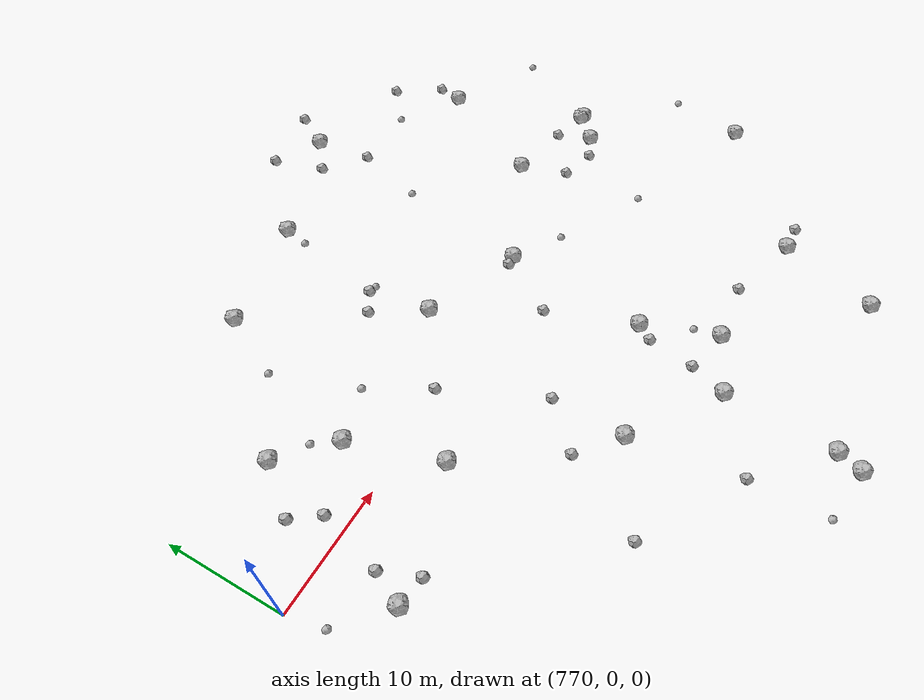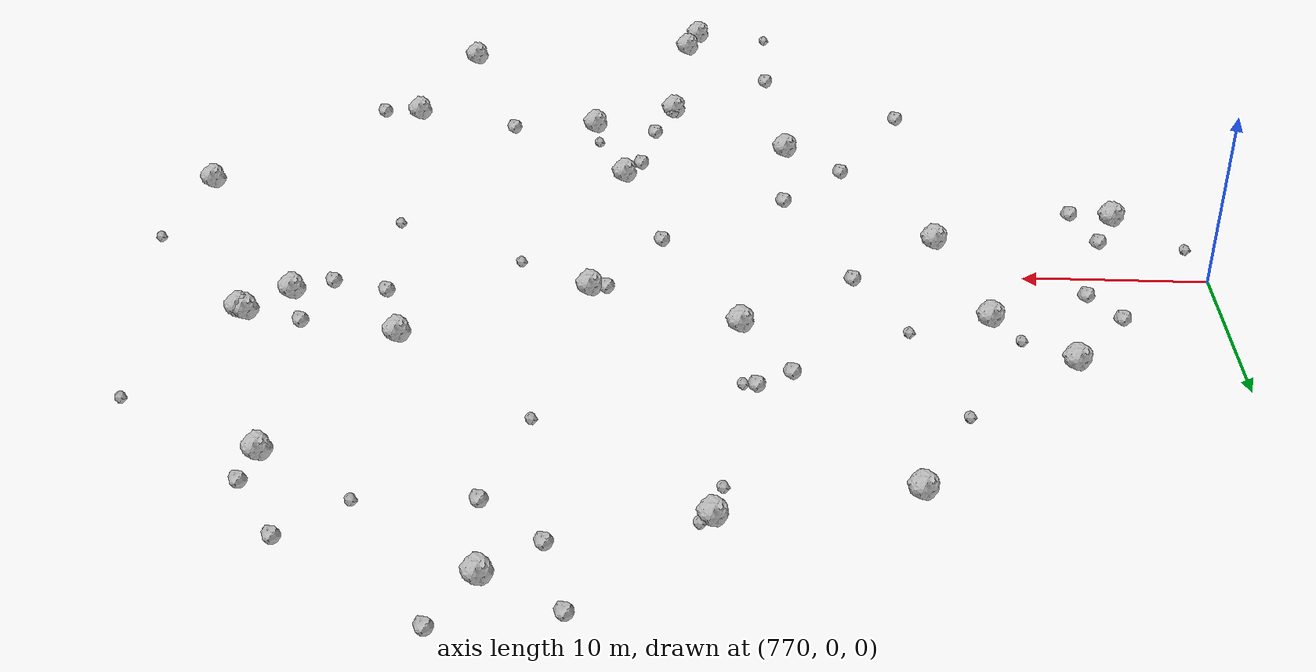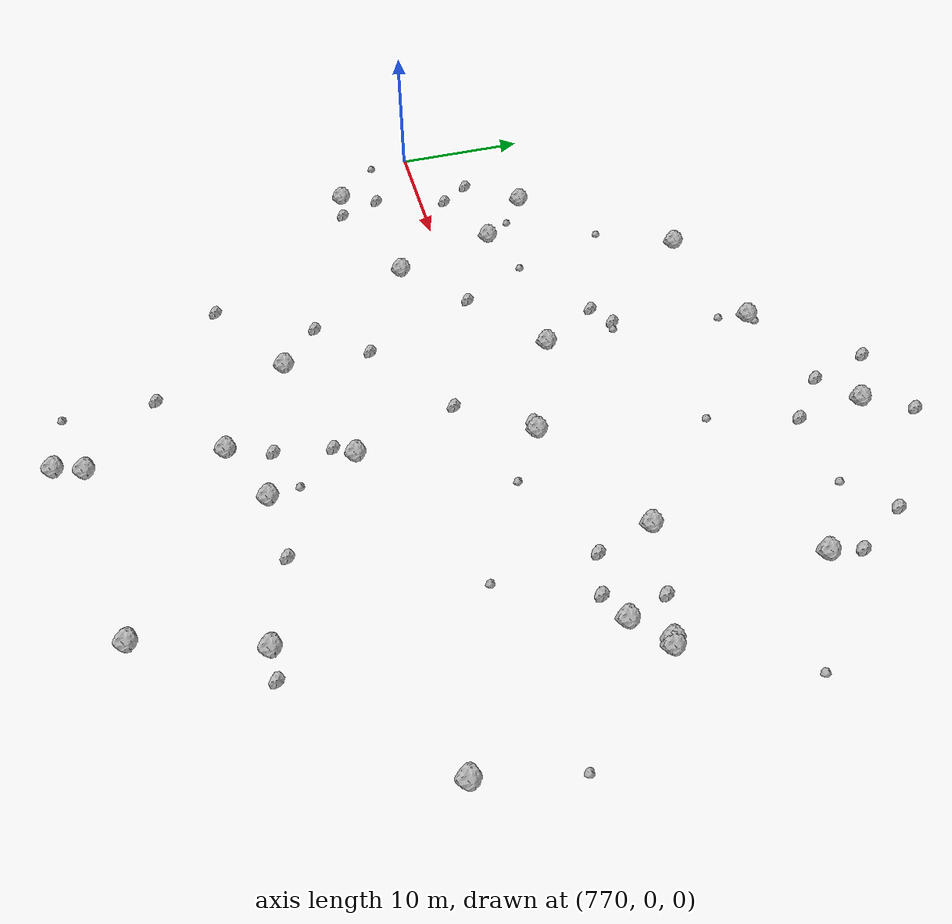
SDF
<sdf version="1.6">
 <world name="default">
  <include><uri>model://sun</uri></include>
  <model name="rock1_20_4">
   <include><uri>model://rock1</uri><pose>796.4278440111848 20.52185683128954 0.5 0 0 0</pose></include>
  </model>
  <model name="rock1_20_5">
   <include><uri>model://rock1</uri><pose>782.2400441132825 4.202237383678408 0.5 0 0 0</pose></include>
  </model>
  <model name="rock1_20_6">
   <include><uri>model://rock1</uri><pose>813.0989731327851 -26.009251034258767 0.5 0 0 0</pose></include>
  </model>
  <model name="rock1_20_7">
   <include><uri>model://rock1</uri><pose>821.6829789534282 4.811476133032244 0.5 0 0 0</pose></include>
  </model>
  <model name="rock1_20_8">
   <include><uri>model://rock1</uri><pose>817.8939827674055 16.619490658279382 0.5 0 0 0</pose></include>
  </model>
  <model name="rock1_20_9">
   <include><uri>model://rock1</uri><pose>826.5203553363515 -8.771042353693012 0.5 0 0 0</pose></include>
  </model>
  <model name="rock1_20_10">
   <include><uri>model://rock1</uri><pose>821.3088209803489 4.950935888574634 0.5 0 0 0</pose></include>
  </model>
  <model name="rock1_20_11">
   <include><uri>model://rock1</uri><pose>786.8754506433726 18.331915180069373 0.5 0 0 0</pose></include>
  </model>
  <model name="rock1_20_12">
   <include><uri>model://rock1</uri><pose>802.2428749790854 -10.355979693858657 0.5 0 0 0</pose></include>
  </model>
  <model name="rock1_20_13">
   <include><uri>model://rock1</uri><pose>812.9832088048587 6.725563451992841 0.5 0 0 0</pose></include>
  </model>
  <model name="rock1_20_14">
   <include><uri>model://rock1</uri><pose>803.3813838702022 2.0005529372976056 0.5 0 0 0</pose></include>
  </model>
  <model name="rock1_20_15">
   <include><uri>model://rock1</uri><pose>815.6555835520905 -17.904151152398857 0.5 0 0 0</pose></include>
  </model>
  <model name="rock1_20_16">
   <include><uri>model://rock1</uri><pose>806.4631375418619 24.712525192623232 0.5 0 0 0</pose></include>
  </model>
  <model name="rock1_20_17">
   <include><uri>model://rock1</uri><pose>774.2231266347032 -6.2882909109834095 0.5 0 0 0</pose></include>
  </model>
  <model name="rock1_20_18">
   <include><uri>model://rock1</uri><pose>798.3850446402563 -29.93777097178024 0.5 0 0 0</pose></include>
  </model>
  <model name="rock1_20_19">
   <include><uri>model://rock1</uri><pose>799.0454428493582 -27.924540843441573 0.5 0 0 0</pose></include>
  </model>
  <model name="rock1_20_20">
   <include><uri>model://rock1</uri><pose>804.4313368273521 -16.522019603469275 0.5 0 0 0</pose></include>
  </model>
  <model name="rock1_20_21">
   <include><uri>model://rock1</uri><pose>819.2714880604666 2.88073838890255 0.5 0 0 0</pose></include>
  </model>
  <model name="rock1_20_22">
   <include><uri>model://rock1</uri><pose>778.3057348303179 7.919992550523503 0.5 0 0 0</pose></include>
  </model>
  <model name="rock1_20_23">
   <include><uri>model://rock1</uri><pose>799.6262382139367 -18.731138097681185 0.5 0 0 0</pose></include>
  </model>
  <model name="rock1_20_24">
   <include><uri>model://rock1</uri><pose>792.6843562174803 -13.771073550164608 0.5 0 0 0</pose></include>
  </model>
  <model name="rock1_20_25">
   <include><uri>model://rock1</uri><pose>795.2846475257769 5.161627555216917 0.5 0 0 0</pose></include>
  </model>
  <model name="rock1_20_26">
   <include><uri>model://rock1</uri><pose>784.534257533435 -3.4370785323798074 0.5 0 0 0</pose></include>
  </model>
  <model name="rock2_20_0">
   <include><uri>model://rock2</uri><pose>789.4154963267903 -11.022698025555755 0.3 0 0 0</pose></include>
  </model>
  <model name="rock2_20_1">
   <include><uri>model://rock2</uri><pose>814.185725412621 2.74957600759155 0.3 0 0 0</pose></include>
  </model>
  <model name="rock2_20_2">
   <include><uri>model://rock2</uri><pose>817.1847782739912 1.9553514801716645 0.3 0 0 0</pose></include>
  </model>
  <model name="rock2_20_3">
   <include><uri>model://rock2</uri><pose>802.5101073099282 26.915476050130742 0.3 0 0 0</pose></include>
  </model>
  <model name="rock2_20_4">
   <include><uri>model://rock2</uri><pose>801.2982312445587 -11.71168805075347 0.3 0 0 0</pose></include>
  </model>
  <model name="rock2_20_5">
   <include><uri>model://rock2</uri><pose>792.8369991128789 -7.512120246656991 0.3 0 0 0</pose></include>
  </model>
  <model name="rock2_20_6">
   <include><uri>model://rock2</uri><pose>794.4240062520157 10.552422768378577 0.3 0 0 0</pose></include>
  </model>
  <model name="rock2_20_7">
   <include><uri>model://rock2</uri><pose>809.4281885457915 -15.994669455293145 0.3 0 0 0</pose></include>
  </model>
  <model name="rock2_20_8">
   <include><uri>model://rock2</uri><pose>799.7038095373211 -18.465130998294235 0.3 0 0 0</pose></include>
  </model>
  <model name="rock2_20_9">
   <include><uri>model://rock2</uri><pose>818.2502372328026 18.86005764345937 0.3 0 0 0</pose></include>
  </model>
  <model name="rock2_20_10">
   <include><uri>model://rock2</uri><pose>817.8391949770539 -17.84032112408605 0.3 0 0 0</pose></include>
  </model>
  <model name="rock2_20_11">
   <include><uri>model://rock2</uri><pose>808.2448609615889 28.004905214748028 0.3 0 0 0</pose></include>
  </model>
  <model name="rock2_20_12">
   <include><uri>model://rock2</uri><pose>793.8043059937133 -22.910905501866136 0.3 0 0 0</pose></include>
  </model>
  <model name="rock2_20_13">
   <include><uri>model://rock2</uri><pose>818.1860764735904 5.761318913980027 0.3 0 0 0</pose></include>
  </model>
  <model name="rock2_20_14">
   <include><uri>model://rock2</uri><pose>815.8431864996069 22.6112441126902 0.3 0 0 0</pose></include>
  </model>
  <model name="rock2_20_15">
   <include><uri>model://rock2</uri><pose>799.685742870457 -2.94138185630921 0.3 0 0 0</pose></include>
  </model>
  <model name="rock2_20_16">
   <include><uri>model://rock2</uri><pose>776.5382976405422 -6.588276136356928 0.3 0 0 0</pose></include>
  </model>
  <model name="rock2_20_17">
   <include><uri>model://rock2</uri><pose>792.6442591466079 9.41558319482295 0.3 0 0 0</pose></include>
  </model>
  <model name="rock2_20_18">
   <include><uri>model://rock2</uri><pose>800.6459494021243 -15.663878800728535 0.3 0 0 0</pose></include>
  </model>
  <model name="rock2_20_19">
   <include><uri>model://rock2</uri><pose>775.3316106464983 4.036902505443386 0.3 0 0 0</pose></include>
  </model>
  <model name="rock2_20_20">
   <include><uri>model://rock2</uri><pose>807.0199489072866 19.812292379972916 0.3 0 0 0</pose></include>
  </model>
  <model name="rock2_20_21">
   <include><uri>model://rock2</uri><pose>785.7013800305049 -17.935419187928797 0.3 0 0 0</pose></include>
  </model>
  <model name="rock2_20_22">
   <include><uri>model://rock2</uri><pose>802.4701025752684 1.9635476739784536 0.3 0 0 0</pose></include>
  </model>
  <model name="rock2_20_23">
   <include><uri>model://rock2</uri><pose>803.802235063404 22.56316383086864 0.3 0 0 0</pose></include>
  </model>
  <model name="rock2_20_24">
   <include><uri>model://rock2</uri><pose>789.2356262391424 0.7248630348290277 0.3 0 0 0</pose></include>
  </model>
  <model name="rock2_20_25">
   <include><uri>model://rock2</uri><pose>776.8791395873848 1.884368231572946 0.3 0 0 0</pose></include>
  </model>
  <model name="rock2_20_26">
   <include><uri>model://rock2</uri><pose>775.3663809940273 -3.561517367549037 0.3 0 0 0</pose></include>
  </model>
  <model name="rock3_20_0">
   <include><uri>model://rock3</uri><pose>805.2622651377064 13.62421619297426 0.2 0 0 0</pose></include>
  </model>
  <model name="rock3_20_1">
   <include><uri>model://rock3</uri><pose>827.7645695129402 -2.3789410088093668 0.2 0 0 0</pose></include>
  </model>
  <model name="rock3_20_2">
   <include><uri>model://rock3</uri><pose>795.0703464815642 10.38904623905443 0.2 0 0 0</pose></include>
  </model>
  <model name="rock3_20_3">
   <include><uri>model://rock3</uri><pose>793.8520129067009 -29.332192183449703 0.2 0 0 0</pose></include>
  </model>
  <model name="rock3_20_4">
   <include><uri>model://rock3</uri><pose>796.962146312857 20.919143596532535 0.2 0 0 0</pose></include>
  </model>
  <model name="rock3_20_5">
   <include><uri>model://rock3</uri><pose>803.9669952747904 -14.37897865155248 0.2 0 0 0</pose></include>
  </model>
  <model name="rock3_20_6">
   <include><uri>model://rock3</uri><pose>780.8108990854838 6.1604203451604675 0.2 0 0 0</pose></include>
  </model>
  <model name="rock3_20_7">
   <include><uri>model://rock3</uri><pose>812.7992697286096 19.93592209033129 0.2 0 0 0</pose></include>
  </model>
  <model name="rock3_20_8">
   <include><uri>model://rock3</uri><pose>807.2594022033654 -0.4855340745335397 0.2 0 0 0</pose></include>
  </model>
  <model name="rock3_20_9">
   <include><uri>model://rock3</uri><pose>814.5676169970579 -4.357376446897334 0.2 0 0 0</pose></include>
  </model>
  <model name="rock3_20_10">
   <include><uri>model://rock3</uri><pose>784.1060856785136 12.723618381427414 0.2 0 0 0</pose></include>
  </model>
  <model name="rock3_20_11">
   <include><uri>model://rock3</uri><pose>795.9466068215893 18.405234901275428 0.2 0 0 0</pose></include>
  </model>
  <model name="rock3_20_12">
   <include><uri>model://rock3</uri><pose>786.5207976582974 5.626569457965459 0.2 0 0 0</pose></include>
  </model>
  <model name="rock3_20_13">
   <include><uri>model://rock3</uri><pose>825.5348691619574 12.657706613145706 0.2 0 0 0</pose></include>
  </model>
  <model name="rock3_20_14">
   <include><uri>model://rock3</uri><pose>770.64727693112 -3.0689436097112512 0.2 0 0 0</pose></include>
  </model>
 </world>
</sdf>
